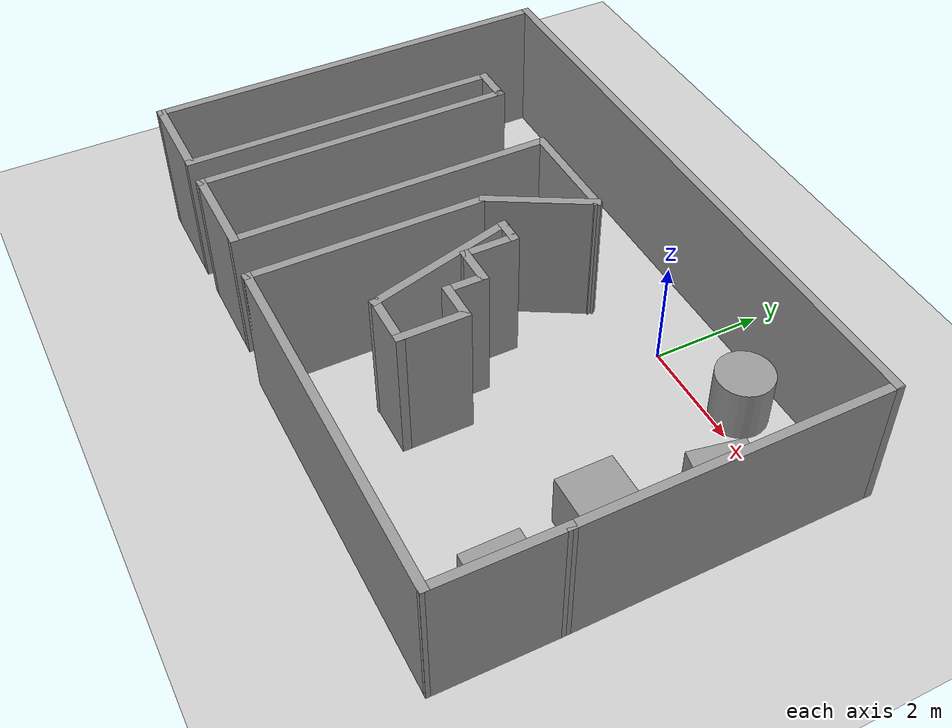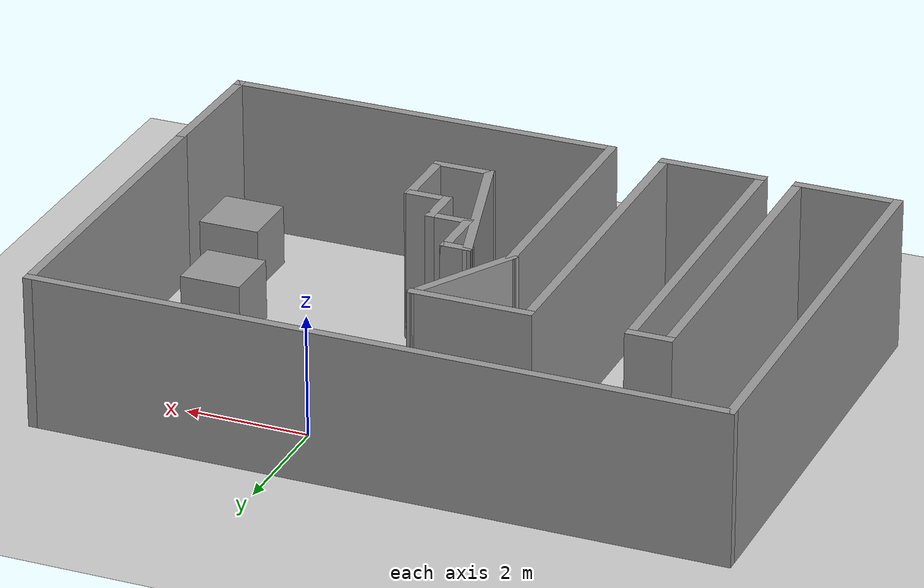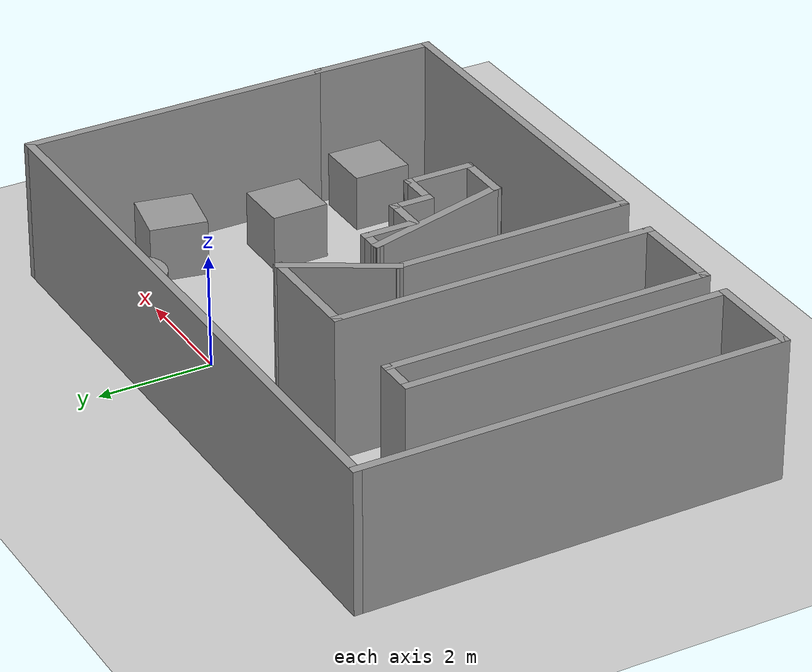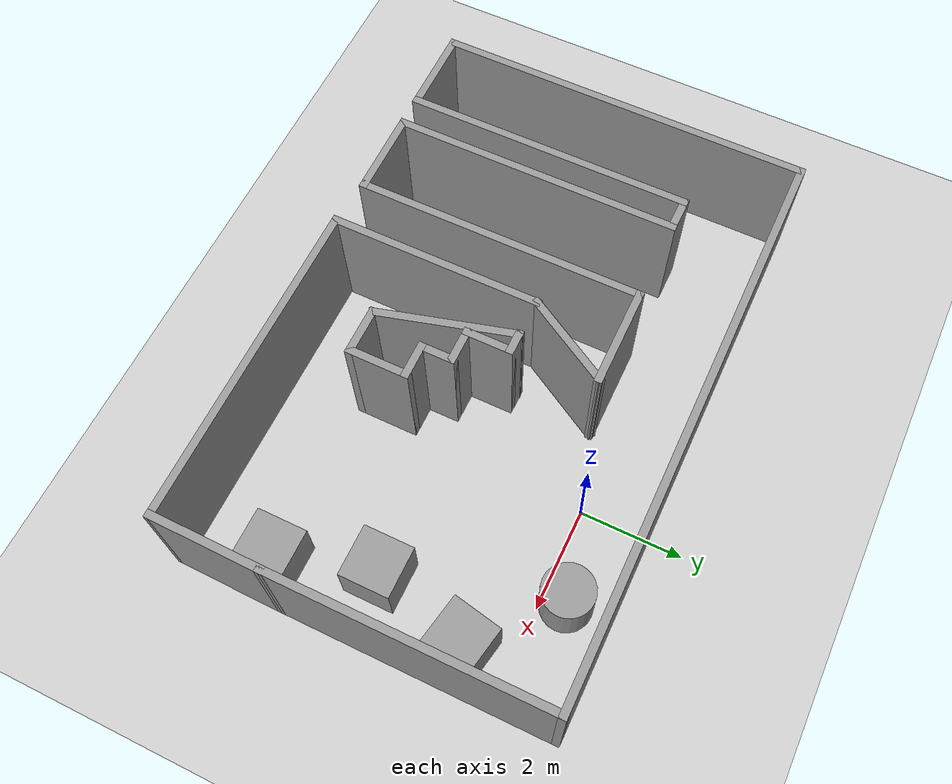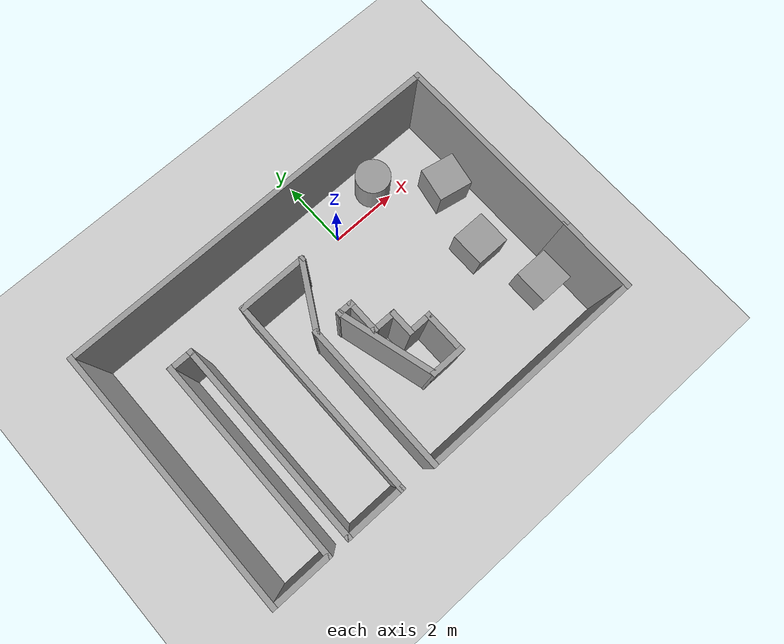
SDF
<sdf version="1.7">
 <world name="default">
  <light name="sun" type="directional">
   <pose>0 0 10 0 -0 0</pose>
   <diffuse>0.8 0.8 0.8 1</diffuse>
   <specular>0.2 0.2 0.2 1</specular>
   <attenuation>
    <range>1000</range>
    <constant>0.9</constant>
    <linear>0.01</linear>
    <quadratic>0.001</quadratic>
   </attenuation>
   <direction>-0.5 0.1 -0.9</direction>
   <spot><inner_angle>0</inner_angle><outer_angle>0</outer_angle><falloff>0</falloff></spot>
  </light>
  <model name="ground_plane">
   <static>1</static>
   <link name="link">
    <collision name="collision">
     <geometry><plane><normal>0 0 1</normal><size>100 100</size></plane></geometry>
     <surface>
      <contact><collide_bitmask>65535</collide_bitmask></contact>
      <friction><ode><mu>100</mu><mu2>50</mu2></ode></friction>
     </surface>
    </collision>
    <visual name="visual">
     <cast_shadows>0</cast_shadows>
     <geometry><plane><normal>0 0 1</normal><size>100 100</size></plane></geometry>
     <material>
      <script><uri>file://media/materials/scripts/gazebo.material</uri><name>Gazebo/Grey</name></script>
     </material>
    </visual>
   </link>
  </model>
  <gravity>0 0 -9.8</gravity>
  <magnetic_field>6e-06 2.3e-05 -4.2e-05</magnetic_field>
  <atmosphere type="adiabatic"/>
  <physics type="ode">
   <max_step_size>0.001</max_step_size>
   <real_time_factor>1</real_time_factor>
   <real_time_update_rate>1000</real_time_update_rate>
  </physics>
  <scene><ambient>0.4 0.4 0.4 1</ambient><background>0.7 0.7 0.7 1</background><shadows>1</shadows></scene>
  <spherical_coordinates>
   <surface_model>EARTH_WGS84</surface_model>
   <latitude_deg>0</latitude_deg>
   <longitude_deg>0</longitude_deg>
   <elevation>0</elevation>
   <heading_deg>0</heading_deg>
  </spherical_coordinates>
  <model name="Untitled">
   <pose>-1.61394 -2.45862 0 0 -0 0</pose>
   <link name="Wall_10">
    <collision name="Wall_10_Collision">
     <geometry><box><size>11.25 0.15 2.5</size></box></geometry>
     <pose>0 0 1.25 0 -0 0</pose>
    </collision>
    <visual name="Wall_10_Visual">
     <pose>0 0 1.25 0 -0 0</pose>
     <geometry><box><size>11.25 0.15 2.5</size></box></geometry>
     <material>
      <script><uri>file://media/materials/scripts/gazebo.material</uri><name>Gazebo/Grey</name></script>
      <ambient>1 1 1 1</ambient>
     </material>
     <meta><layer>0</layer></meta>
    </visual>
    <pose>-0.000443 3.72652 0 0 -0 3.14159</pose>
   </link>
   <link name="Wall_11">
    <collision name="Wall_11_Collision">
     <geometry><box><size>7.5 0.15 2.5</size></box></geometry>
     <pose>0 0 1.25 0 -0 0</pose>
    </collision>
    <visual name="Wall_11_Visual">
     <pose>0 0 1.25 0 -0 0</pose>
     <geometry><box><size>7.5 0.15 2.5</size></box></geometry>
     <material>
      <script><uri>file://media/materials/scripts/gazebo.material</uri><name>Gazebo/Grey</name></script>
      <ambient>1 1 1 1</ambient>
     </material>
     <meta><layer>0</layer></meta>
    </visual>
    <pose>-5.55044 0.051517 0 0 -0 -1.5708</pose>
   </link>
   <link name="Wall_12">
    <collision name="Wall_12_Collision">
     <geometry><box><size>1.75 0.15 2.5</size></box></geometry>
     <pose>0 0 1.25 0 -0 0</pose>
    </collision>
    <visual name="Wall_12_Visual">
     <pose>0 0 1.25 0 -0 0</pose>
     <geometry><box><size>1.75 0.15 2.5</size></box></geometry>
     <material>
      <script><uri>file://media/materials/scripts/gazebo.material</uri><name>Gazebo/Grey</name></script>
      <ambient>1 1 1 1</ambient>
     </material>
     <meta><layer>0</layer></meta>
    </visual>
    <pose>-4.75044 -3.62348 0 0 -0 0</pose>
   </link>
   <link name="Wall_13">
    <collision name="Wall_13_Collision">
     <geometry><box><size>5.75 0.15 2.5</size></box></geometry>
     <pose>0 0 1.25 0 -0 0</pose>
    </collision>
    <visual name="Wall_13_Visual">
     <pose>0 0 1.25 0 -0 0</pose>
     <geometry><box><size>5.75 0.15 2.5</size></box></geometry>
     <material>
      <script><uri>file://media/materials/scripts/gazebo.material</uri><name>Gazebo/Grey</name></script>
      <ambient>1 1 1 1</ambient>
     </material>
     <meta><layer>0</layer></meta>
    </visual>
    <pose>-3.95044 -0.823483 0 0 -0 1.5708</pose>
   </link>
   <link name="Wall_14">
    <collision name="Wall_14_Collision">
     <geometry><box><size>0.75 0.15 2.5</size></box></geometry>
     <pose>0 0 1.25 0 -0 0</pose>
    </collision>
    <visual name="Wall_14_Visual">
     <pose>0 0 1.25 0 -0 0</pose>
     <geometry><box><size>0.75 0.15 2.5</size></box></geometry>
     <material>
      <script><uri>file://media/materials/scripts/gazebo.material</uri><name>Gazebo/Grey</name></script>
      <ambient>1 1 1 1</ambient>
     </material>
     <meta><layer>0</layer></meta>
    </visual>
    <pose>-3.65044 1.97652 0 0 -0 0</pose>
   </link>
   <link name="Wall_15">
    <collision name="Wall_15_Collision">
     <geometry><box><size>5.75 0.15 2.5</size></box></geometry>
     <pose>0 0 1.25 0 -0 0</pose>
    </collision>
    <visual name="Wall_15_Visual">
     <pose>0 0 1.25 0 -0 0</pose>
     <geometry><box><size>5.75 0.15 2.5</size></box></geometry>
     <material>
      <script><uri>file://media/materials/scripts/gazebo.material</uri><name>Gazebo/Grey</name></script>
      <ambient>1 1 1 1</ambient>
     </material>
     <meta><layer>0</layer></meta>
    </visual>
    <pose>-3.35044 -0.823483 0 0 -0 -1.5708</pose>
   </link>
   <link name="Wall_16">
    <collision name="Wall_16_Collision">
     <geometry><box><size>1.75 0.15 2.5</size></box></geometry>
     <pose>0 0 1.25 0 -0 0</pose>
    </collision>
    <visual name="Wall_16_Visual">
     <pose>0 0 1.25 0 -0 0</pose>
     <geometry><box><size>1.75 0.15 2.5</size></box></geometry>
     <material>
      <script><uri>file://media/materials/scripts/gazebo.material</uri><name>Gazebo/Grey</name></script>
      <ambient>1 1 1 1</ambient>
     </material>
     <meta><layer>0</layer></meta>
    </visual>
    <pose>-2.55044 -3.62348 0 0 -0 0</pose>
   </link>
   <link name="Wall_17">
    <collision name="Wall_17_Collision">
     <geometry><box><size>5.75 0.15 2.5</size></box></geometry>
     <pose>0 0 1.25 0 -0 0</pose>
    </collision>
    <visual name="Wall_17_Visual">
     <pose>0 0 1.25 0 -0 0</pose>
     <geometry><box><size>5.75 0.15 2.5</size></box></geometry>
     <material>
      <script><uri>file://media/materials/scripts/gazebo.material</uri><name>Gazebo/Grey</name></script>
      <ambient>1 1 1 1</ambient>
     </material>
     <meta><layer>0</layer></meta>
    </visual>
    <pose>-1.75044 -0.823483 0 0 -0 1.5708</pose>
   </link>
   <link name="Wall_18">
    <collision name="Wall_18_Collision">
     <geometry><box><size>2 0.15 2.5</size></box></geometry>
     <pose>0 0 1.25 0 -0 0</pose>
    </collision>
    <visual name="Wall_18_Visual">
     <pose>0 0 1.25 0 -0 0</pose>
     <geometry><box><size>2 0.15 2.5</size></box></geometry>
     <material>
      <script><uri>file://media/materials/scripts/gazebo.material</uri><name>Gazebo/Grey</name></script>
      <ambient>1 1 1 1</ambient>
     </material>
     <meta><layer>0</layer></meta>
    </visual>
    <pose>-0.825443 1.97652 0 0 -0 0</pose>
   </link>
   <link name="Wall_19">
    <collision name="Wall_19_Collision">
     <geometry><box><size>2 0.15 2.5</size></box></geometry>
     <pose>0 0 1.25 0 -0 0</pose>
    </collision>
    <visual name="Wall_19_Visual">
     <pose>0 0 1.25 0 -0 0</pose>
     <geometry><box><size>2 0.15 2.5</size></box></geometry>
     <material>
      <script><uri>file://media/materials/scripts/gazebo.material</uri><name>Gazebo/Grey</name></script>
      <ambient>1 1 1 1</ambient>
     </material>
     <meta><layer>0</layer></meta>
    </visual>
    <pose>-0.362943 1.17544 0 0 -0 -2.0944</pose>
   </link>
   <link name="Wall_20">
    <collision name="Wall_20_Collision">
     <geometry><box><size>4.25 0.15 2.5</size></box></geometry>
     <pose>0 0 1.25 0 -0 0</pose>
    </collision>
    <visual name="Wall_20_Visual">
     <pose>0 0 1.25 0 -0 0</pose>
     <geometry><box><size>4.25 0.15 2.5</size></box></geometry>
     <material>
      <script><uri>file://media/materials/scripts/gazebo.material</uri><name>Gazebo/Grey</name></script>
      <ambient>1 1 1 1</ambient>
     </material>
     <meta><layer>0</layer></meta>
    </visual>
    <pose>-0.825443 -1.67563 0 0 -0 -1.5708</pose>
   </link>
   <link name="Wall_21">
    <collision name="Wall_21_Collision">
     <geometry><box><size>6.5 0.15 2.5</size></box></geometry>
     <pose>0 0 1.25 0 -0 0</pose>
    </collision>
    <visual name="Wall_21_Visual">
     <pose>0 0 1.25 0 -0 0</pose>
     <geometry><box><size>6.5 0.15 2.5</size></box></geometry>
     <material>
      <script><uri>file://media/materials/scripts/gazebo.material</uri><name>Gazebo/Grey</name></script>
      <ambient>1 1 1 1</ambient>
     </material>
     <meta><layer>0</layer></meta>
    </visual>
    <pose>2.34956 -3.72563 0 0 -0 0</pose>
   </link>
   <link name="Wall_22">
    <collision name="Wall_22_Collision">
     <geometry><box><size>2.2523 0.15 2.5</size></box></geometry>
     <pose>0 0 1.25 0 -0 0</pose>
    </collision>
    <visual name="Wall_22_Visual">
     <pose>0 0 1.25 0 -0 0</pose>
     <geometry><box><size>2.2523 0.15 2.5</size></box></geometry>
     <material>
      <script><uri>file://media/materials/scripts/gazebo.material</uri><name>Gazebo/Grey</name></script>
      <ambient>1 1 1 1</ambient>
     </material>
     <meta><layer>0</layer></meta>
    </visual>
    <pose>5.53706 -2.67456 0 0 -0 1.5589</pose>
   </link>
   <link name="Wall_26">
    <collision name="Wall_26_Collision">
     <geometry><box><size>0.5 0.15 2.5</size></box></geometry>
     <pose>0 0 1.25 0 -0 0</pose>
    </collision>
    <visual name="Wall_26_Visual">
     <pose>0 0 1.25 0 -0 0</pose>
     <geometry><box><size>0.5 0.15 2.5</size></box></geometry>
     <material>
      <script><uri>file://media/materials/scripts/gazebo.material</uri><name>Gazebo/Grey</name></script>
      <ambient>1 1 1 1</ambient>
     </material>
     <meta><layer>0</layer></meta>
    </visual>
    <pose>0.075267 0.352894 0 0 -0 0</pose>
   </link>
   <link name="Wall_27">
    <collision name="Wall_27_Collision">
     <geometry><box><size>1 0.15 2.5</size></box></geometry>
     <pose>0 0 1.25 0 -0 0</pose>
    </collision>
    <visual name="Wall_27_Visual">
     <pose>0 0 1.25 0 -0 0</pose>
     <geometry><box><size>1 0.15 2.5</size></box></geometry>
     <material>
      <script><uri>file://media/materials/scripts/gazebo.material</uri><name>Gazebo/Grey</name></script>
      <ambient>1 1 1 1</ambient>
     </material>
     <meta><layer>0</layer></meta>
    </visual>
    <pose>0.250267 -0.072106 0 0 -0 -1.5708</pose>
   </link>
   <link name="Wall_28">
    <collision name="Wall_28_Collision">
     <geometry><box><size>0.75 0.15 2.5</size></box></geometry>
     <pose>0 0 1.25 0 -0 0</pose>
    </collision>
    <visual name="Wall_28_Visual">
     <pose>0 0 1.25 0 -0 0</pose>
     <geometry><box><size>0.75 0.15 2.5</size></box></geometry>
     <material>
      <script><uri>file://media/materials/scripts/gazebo.material</uri><name>Gazebo/Grey</name></script>
      <ambient>1 1 1 1</ambient>
     </material>
     <meta><layer>0</layer></meta>
    </visual>
    <pose>0.550267 -0.497106 0 0 -0 0</pose>
   </link>
   <link name="Wall_29">
    <collision name="Wall_29_Collision">
     <geometry><box><size>0.75 0.15 2.5</size></box></geometry>
     <pose>0 0 1.25 0 -0 0</pose>
    </collision>
    <visual name="Wall_29_Visual">
     <pose>0 0 1.25 0 -0 0</pose>
     <geometry><box><size>0.75 0.15 2.5</size></box></geometry>
     <material>
      <script><uri>file://media/materials/scripts/gazebo.material</uri><name>Gazebo/Grey</name></script>
      <ambient>1 1 1 1</ambient>
     </material>
     <meta><layer>0</layer></meta>
    </visual>
    <pose>0.850267 -0.797106 0 0 -0 -1.5708</pose>
   </link>
   <link name="Wall_30">
    <collision name="Wall_30_Collision">
     <geometry><box><size>0.75 0.15 2.5</size></box></geometry>
     <pose>0 0 1.25 0 -0 0</pose>
    </collision>
    <visual name="Wall_30_Visual">
     <pose>0 0 1.25 0 -0 0</pose>
     <geometry><box><size>0.75 0.15 2.5</size></box></geometry>
     <material>
      <script><uri>file://media/materials/scripts/gazebo.material</uri><name>Gazebo/Grey</name></script>
      <ambient>1 1 1 1</ambient>
     </material>
     <meta><layer>0</layer></meta>
    </visual>
    <pose>1.15027 -1.09711 0 0 -0 0</pose>
   </link>
   <link name="Wall_31">
    <collision name="Wall_31_Collision">
     <geometry><box><size>1.25 0.15 2.5</size></box></geometry>
     <pose>0 0 1.25 0 -0 0</pose>
    </collision>
    <visual name="Wall_31_Visual">
     <pose>0 0 1.25 0 -0 0</pose>
     <geometry><box><size>1.25 0.15 2.5</size></box></geometry>
     <material>
      <script><uri>file://media/materials/scripts/gazebo.material</uri><name>Gazebo/Grey</name></script>
      <ambient>1 1 1 1</ambient>
     </material>
     <meta><layer>0</layer></meta>
    </visual>
    <pose>1.45027 -1.64711 0 0 -0 -1.5708</pose>
   </link>
   <link name="Wall_32">
    <collision name="Wall_32_Collision">
     <geometry><box><size>1 0.15 2.5</size></box></geometry>
     <pose>0 0 1.25 0 -0 0</pose>
    </collision>
    <visual name="Wall_32_Visual">
     <pose>0 0 1.25 0 -0 0</pose>
     <geometry><box><size>1 0.15 2.5</size></box></geometry>
     <material>
      <script><uri>file://media/materials/scripts/gazebo.material</uri><name>Gazebo/Grey</name></script>
      <ambient>1 1 1 1</ambient>
     </material>
     <meta><layer>0</layer></meta>
    </visual>
    <pose>1.02527 -2.19711 0 0 -0 3.14159</pose>
   </link>
   <link name="Wall_33">
    <collision name="Wall_33_Collision">
     <geometry><box><size>2.79433 0.15 2.5</size></box></geometry>
     <pose>0 0 1.25 0 -0 0</pose>
    </collision>
    <visual name="Wall_33_Visual">
     <pose>0 0 1.25 0 -0 0</pose>
     <geometry><box><size>2.79433 0.15 2.5</size></box></geometry>
     <material>
      <script><uri>file://media/materials/scripts/gazebo.material</uri><name>Gazebo/Grey</name></script>
      <ambient>1 1 1 1</ambient>
     </material>
     <meta><layer>0</layer></meta>
    </visual>
    <pose>0.250267 -0.922106 0 0 -0 1.83871</pose>
   </link>
   <link name="Wall_9">
    <collision name="Wall_9_Collision">
     <geometry><box><size>5.5 0.15 2.5</size></box></geometry>
     <pose>0 0 1.25 0 -0 0</pose>
    </collision>
    <visual name="Wall_9_Visual">
     <pose>0 0 1.25 0 -0 0</pose>
     <geometry><box><size>5.5 0.15 2.5</size></box></geometry>
     <material>
      <script><uri>file://media/materials/scripts/gazebo.material</uri><name>Gazebo/Grey</name></script>
      <ambient>1 1 1 1</ambient>
     </material>
     <meta><layer>0</layer></meta>
    </visual>
    <pose>5.54956 1.05152 0 0 -0 1.5708</pose>
   </link>
   <static>1</static>
  </model>
  <model name="unit_box">
   <pose>3.20612 -4.64383 0.499995 0 1e-05 0</pose>
   <link name="link">
    <inertial>
     <mass>1</mass>
     <inertia>
      <ixx>0.166667</ixx>
      <ixy>0</ixy>
      <ixz>0</ixz>
      <iyy>0.166667</iyy>
      <iyz>0</iyz>
      <izz>0.166667</izz>
     </inertia>
    </inertial>
    <collision name="collision"><geometry><box><size>1 1 1</size></box></geometry></collision>
    <visual name="visual">
     <geometry><box><size>1 1 1</size></box></geometry>
     <material>
      <script><name>Gazebo/Grey</name><uri>file://media/materials/scripts/gazebo.material</uri></script>
     </material>
    </visual>
   </link>
  </model>
  <model name="unit_box_0">
   <pose>2.67109 -2.78797 0.499995 -1e-05 -0 -0</pose>
   <link name="link">
    <inertial>
     <mass>1</mass>
     <inertia>
      <ixx>0.166667</ixx>
      <ixy>0</ixy>
      <ixz>0</ixz>
      <iyy>0.166667</iyy>
      <iyz>0</iyz>
      <izz>0.166667</izz>
     </inertia>
    </inertial>
    <collision name="collision"><geometry><box><size>1 1 1</size></box></geometry></collision>
    <visual name="visual">
     <geometry><box><size>1 1 1</size></box></geometry>
     <material>
      <script><name>Gazebo/Grey</name><uri>file://media/materials/scripts/gazebo.material</uri></script>
     </material>
    </visual>
   </link>
  </model>
  <model name="unit_box_1">
   <pose>3.20228 -0.889999 0.499995 1e-05 0 -0.1916</pose>
   <link name="link">
    <inertial>
     <mass>1</mass>
     <inertia>
      <ixx>0.166667</ixx>
      <ixy>0</ixy>
      <ixz>0</ixz>
      <iyy>0.166667</iyy>
      <iyz>0</iyz>
      <izz>0.166667</izz>
     </inertia>
    </inertial>
    <collision name="collision"><geometry><box><size>1 1 1</size></box></geometry></collision>
    <visual name="visual">
     <geometry><box><size>1 1 1</size></box></geometry>
     <material>
      <script><name>Gazebo/Grey</name><uri>file://media/materials/scripts/gazebo.material</uri></script>
     </material>
    </visual>
   </link>
  </model>
  <model name="unit_cylinder">
   <pose>1.71199 0.451219 0.499997 3e-06 4e-06 -0</pose>
   <link name="link">
    <inertial>
     <mass>1</mass>
     <inertia><ixx>0.145833</ixx><ixy>0</ixy><ixz>0</ixz><iyy>0.145833</iyy><iyz>0</iyz><izz>0.125</izz></inertia>
    </inertial>
    <collision name="collision">
     <geometry><cylinder><radius>0.5</radius><length>1</length></cylinder></geometry>
    </collision>
    <visual name="visual">
     <geometry><cylinder><radius>0.5</radius><length>1</length></cylinder></geometry>
     <material>
      <script><name>Gazebo/Grey</name><uri>file://media/materials/scripts/gazebo.material</uri></script>
     </material>
    </visual>
   </link>
  </model>
 </world>
</sdf>
